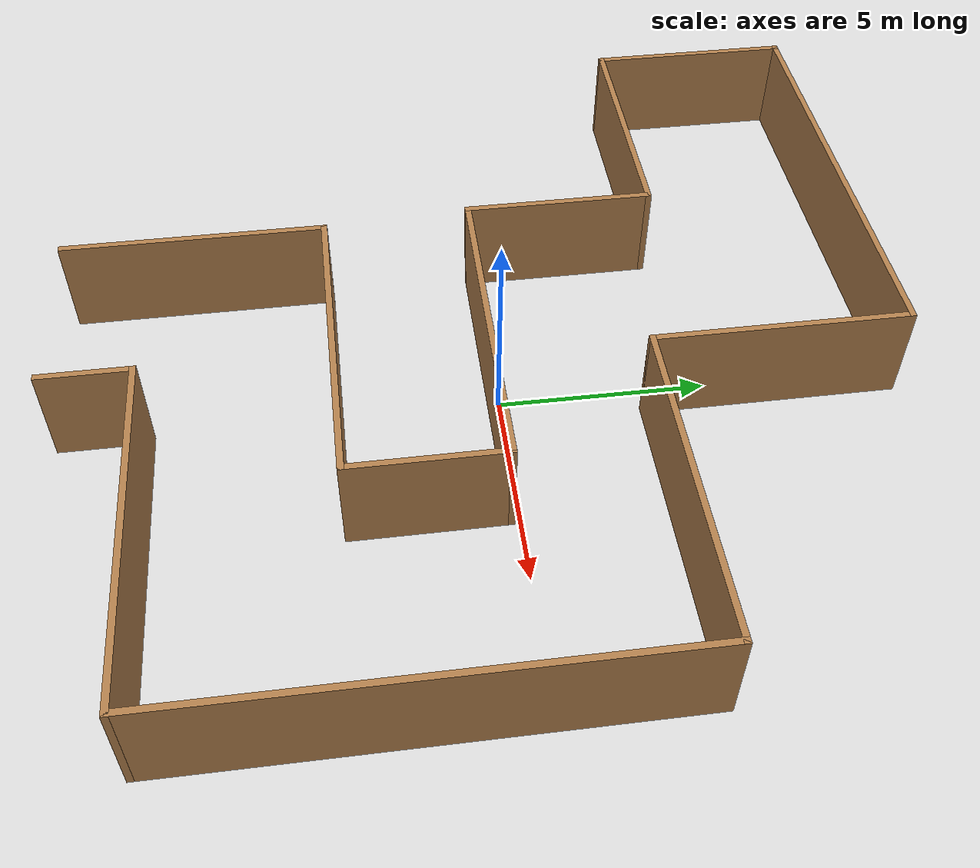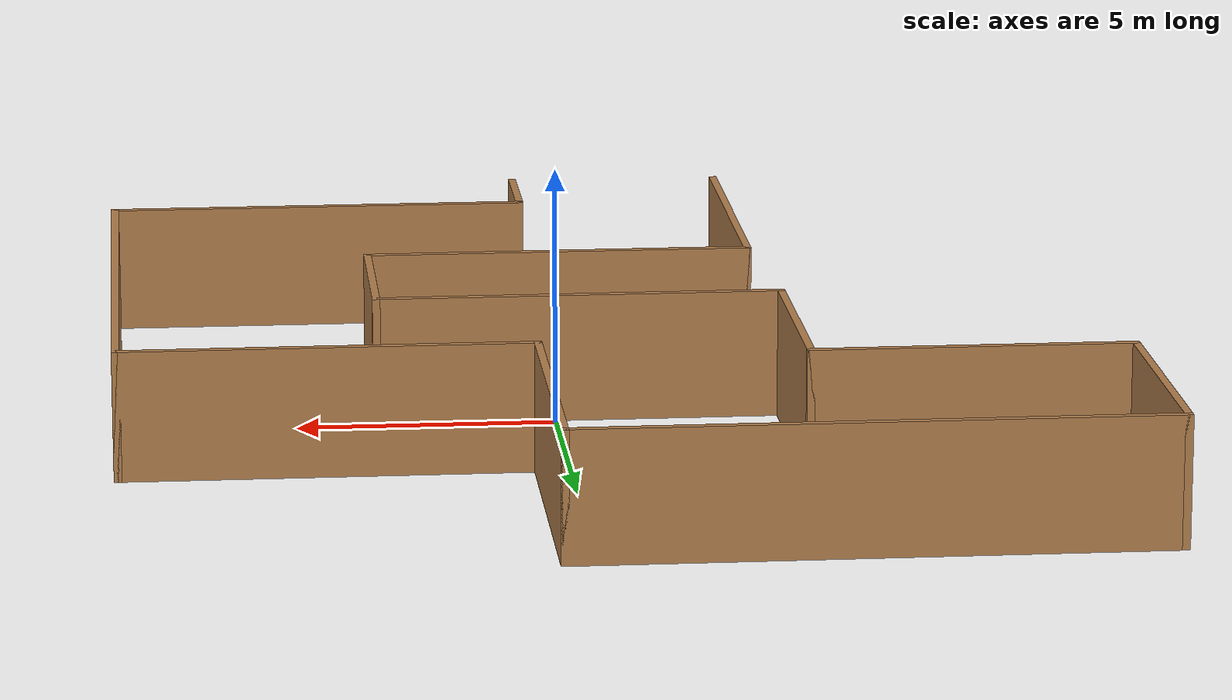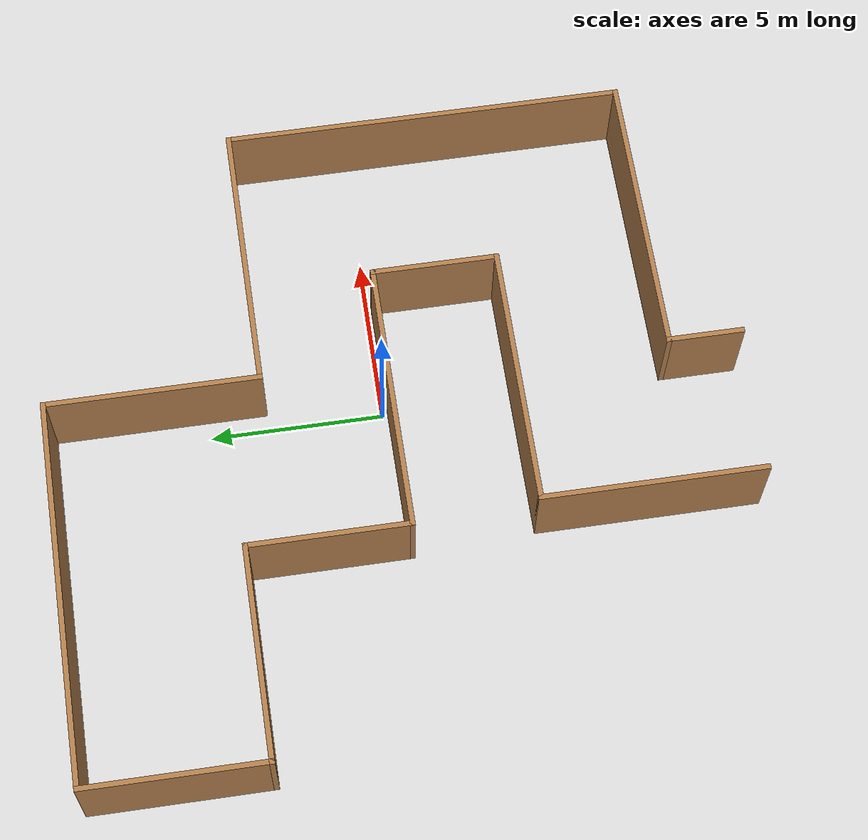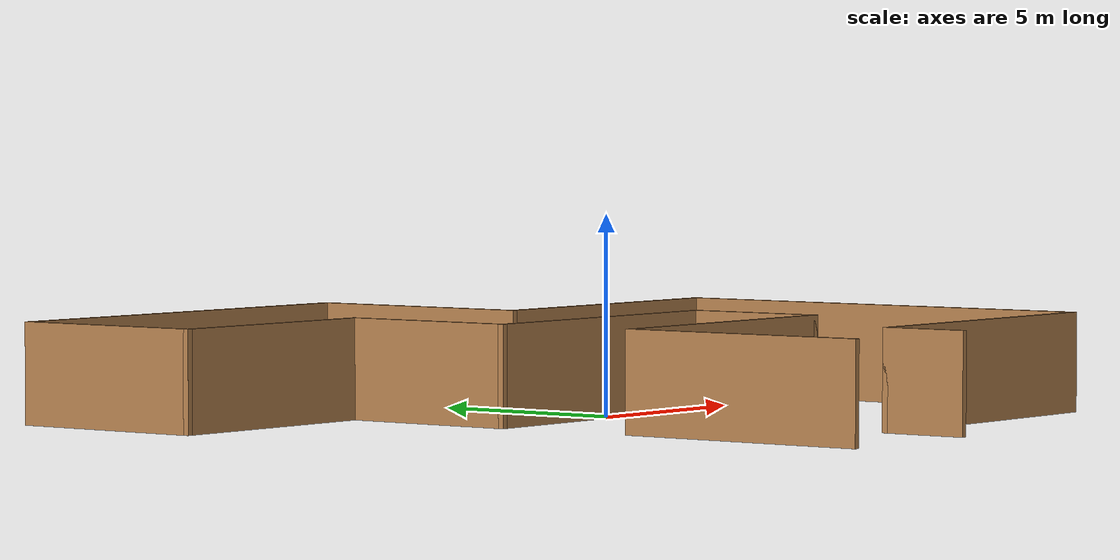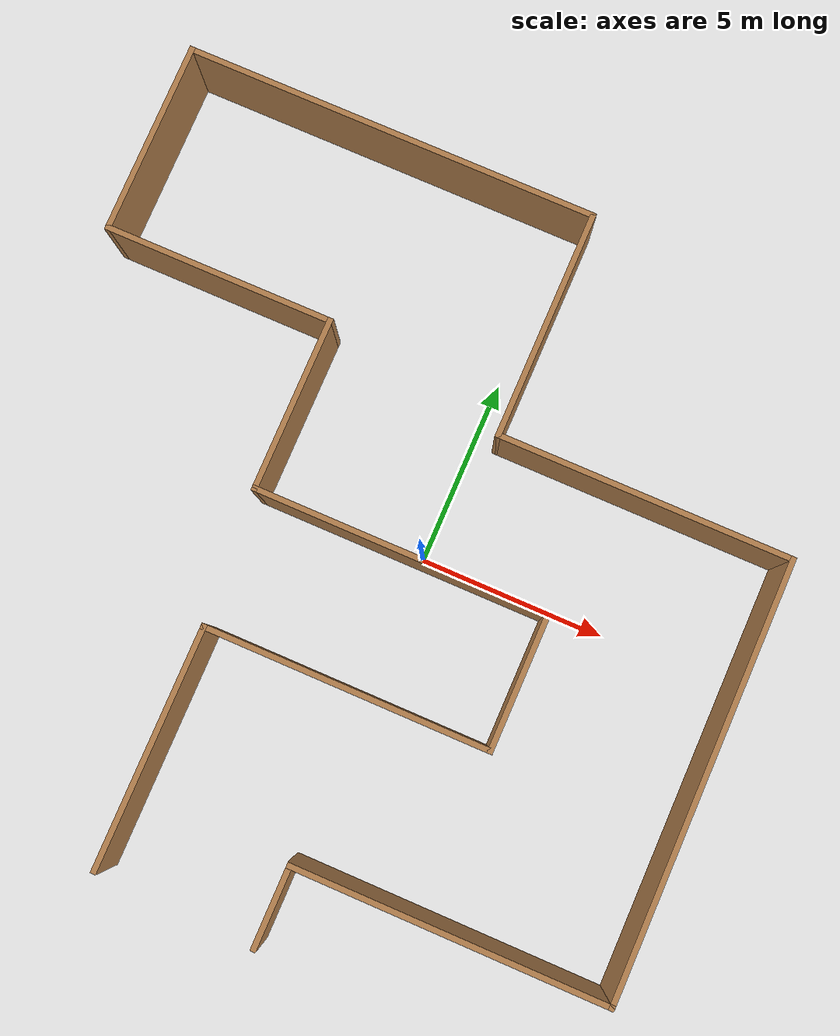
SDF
<?xml version='1.0'?>
<sdf version='1.6'>
  <model name='gazebo_course_2_easy'>
    <pose frame=''>-1.02928 -0.402715 0 0 -0 0</pose>
    <link name='Wall_10'>
      <collision name='Wall_10_Collision'>
        <geometry>
          <box>
            <size>7.75 0.15 2.5</size>
          </box>
        </geometry>
        <pose frame=''>0 0 1.25 0 -0 0</pose>
      </collision>
      <visual name='Wall_10_Visual'>
        <pose frame=''>0 0 1.25 0 -0 0</pose>
        <geometry>
          <box>
            <size>7.75 0.15 2.5</size>
          </box>
        </geometry>
        <material>
          <script>
            <uri>file://media/materials/scripts/gazebo.material</uri>
            <name>Gazebo/Wood</name>
          </script>
          <ambient>1 1 1 1</ambient>
        </material>
        <meta>
          <layer>0</layer>
        </meta>
      </visual>
      <pose frame=''>0.675 -3.4 0 0 -0 0</pose>
    </link>
    <link name='Wall_11'>
      <collision name='Wall_11_Collision'>
        <geometry>
          <box>
            <size>3.75 0.15 2.5</size>
          </box>
        </geometry>
        <pose frame=''>0 0 1.25 0 -0 0</pose>
      </collision>
      <visual name='Wall_11_Visual'>
        <pose frame=''>0 0 1.25 0 -0 0</pose>
        <geometry>
          <box>
            <size>3.75 0.15 2.5</size>
          </box>
        </geometry>
        <material>
          <script>
            <uri>file://media/materials/scripts/gazebo.material</uri>
            <name>Gazebo/Wood</name>
          </script>
          <ambient>1 1 1 1</ambient>
        </material>
        <meta>
          <layer>0</layer>
        </meta>
      </visual>
      <pose frame=''>4.475 -1.6 0 0 -0 1.5708</pose>
    </link>
    <link name='Wall_12'>
      <collision name='Wall_12_Collision'>
        <geometry>
          <box>
            <size>8 0.15 2.5</size>
          </box>
        </geometry>
        <pose frame=''>0 0 1.25 0 -0 0</pose>
      </collision>
      <visual name='Wall_12_Visual'>
        <pose frame=''>0 0 1.25 0 -0 0</pose>
        <geometry>
          <box>
            <size>8 0.15 2.5</size>
          </box>
        </geometry>
        <material>
          <script>
            <uri>file://media/materials/scripts/gazebo.material</uri>
            <name>Gazebo/Wood</name>
          </script>
          <ambient>1 1 1 1</ambient>
        </material>
        <meta>
          <layer>0</layer>
        </meta>
      </visual>
      <pose frame=''>0.55 0.2 0 0 -0 3.14159</pose>
    </link>
    <link name='Wall_13'>
      <collision name='Wall_13_Collision'>
        <geometry>
          <box>
            <size>4.75 0.15 2.5</size>
          </box>
        </geometry>
        <pose frame=''>0 0 1.25 0 -0 0</pose>
      </collision>
      <visual name='Wall_13_Visual'>
        <pose frame=''>0 0 1.25 0 -0 0</pose>
        <geometry>
          <box>
            <size>4.75 0.15 2.5</size>
          </box>
        </geometry>
        <material>
          <script>
            <uri>file://media/materials/scripts/gazebo.material</uri>
            <name>Gazebo/Wood</name>
          </script>
          <ambient>1 1 1 1</ambient>
        </material>
        <meta>
          <layer>0</layer>
        </meta>
      </visual>
      <pose frame=''>-3.375 2.5 0 0 -0 1.5708</pose>
    </link>
    <link name='Wall_14'>
      <collision name='Wall_14_Collision'>
        <geometry>
          <box>
            <size>6.25 0.15 2.5</size>
          </box>
        </geometry>
        <pose frame=''>0 0 1.25 0 -0 0</pose>
      </collision>
      <visual name='Wall_14_Visual'>
        <pose frame=''>0 0 1.25 0 -0 0</pose>
        <geometry>
          <box>
            <size>6.25 0.15 2.5</size>
          </box>
        </geometry>
        <material>
          <script>
            <uri>file://media/materials/scripts/gazebo.material</uri>
            <name>Gazebo/Wood</name>
          </script>
          <ambient>1 1 1 1</ambient>
        </material>
        <meta>
          <layer>0</layer>
        </meta>
      </visual>
      <pose frame=''>-6.425 4.8 0 0 -0 3.14159</pose>
    </link>
    <link name='Wall_15'>
      <collision name='Wall_15_Collision'>
        <geometry>
          <box>
            <size>5.25 0.15 2.5</size>
          </box>
        </geometry>
        <pose frame=''>0 0 1.25 0 -0 0</pose>
      </collision>
      <visual name='Wall_15_Visual'>
        <pose frame=''>0 0 1.25 0 -0 0</pose>
        <geometry>
          <box>
            <size>5.25 0.15 2.5</size>
          </box>
        </geometry>
        <material>
          <script>
            <uri>file://media/materials/scripts/gazebo.material</uri>
            <name>Gazebo/Wood</name>
          </script>
          <ambient>1 1 1 1</ambient>
        </material>
        <meta>
          <layer>0</layer>
        </meta>
      </visual>
      <pose frame=''>-9.475 7.35 0 0 -0 1.5708</pose>
    </link>
    <link name='Wall_16'>
      <collision name='Wall_16_Collision'>
        <geometry>
          <box>
            <size>11.25 0.15 2.5</size>
          </box>
        </geometry>
        <pose frame=''>0 0 1.25 0 -0 0</pose>
      </collision>
      <visual name='Wall_16_Visual'>
        <pose frame=''>0 0 1.25 0 -0 0</pose>
        <geometry>
          <box>
            <size>11.25 0.15 2.5</size>
          </box>
        </geometry>
        <material>
          <script>
            <uri>file://media/materials/scripts/gazebo.material</uri>
            <name>Gazebo/Wood</name>
          </script>
          <ambient>1 1 1 1</ambient>
        </material>
        <meta>
          <layer>0</layer>
        </meta>
      </visual>
      <pose frame=''>-3.925 9.9 0 0 -0 0</pose>
    </link>
    <link name='Wall_17'>
      <collision name='Wall_17_Collision'>
        <geometry>
          <box>
            <size>6.25 0.15 2.5</size>
          </box>
        </geometry>
        <pose frame=''>0 0 1.25 0 -0 0</pose>
      </collision>
      <visual name='Wall_17_Visual'>
        <pose frame=''>0 0 1.25 0 -0 0</pose>
        <geometry>
          <box>
            <size>6.25 0.15 2.5</size>
          </box>
        </geometry>
        <material>
          <script>
            <uri>file://media/materials/scripts/gazebo.material</uri>
            <name>Gazebo/Wood</name>
          </script>
          <ambient>1 1 1 1</ambient>
        </material>
        <meta>
          <layer>0</layer>
        </meta>
      </visual>
      <pose frame=''>1.625 6.85 0 0 -0 -1.5708</pose>
    </link>
    <link name='Wall_18'>
      <collision name='Wall_18_Collision'>
        <geometry>
          <box>
            <size>8 0.15 2.5</size>
          </box>
        </geometry>
        <pose frame=''>0 0 1.25 0 -0 0</pose>
      </collision>
      <visual name='Wall_18_Visual'>
        <pose frame=''>0 0 1.25 0 -0 0</pose>
        <geometry>
          <box>
            <size>8 0.15 2.5</size>
          </box>
        </geometry>
        <material>
          <script>
            <uri>file://media/materials/scripts/gazebo.material</uri>
            <name>Gazebo/Wood</name>
          </script>
          <ambient>1 1 1 1</ambient>
        </material>
        <meta>
          <layer>0</layer>
        </meta>
      </visual>
      <pose frame=''>5.55 3.8 0 0 -0 0</pose>
    </link>
    <link name='Wall_19'>
      <collision name='Wall_19_Collision'>
        <geometry>
          <box>
            <size>11.75 0.15 2.5</size>
          </box>
        </geometry>
        <pose frame=''>0 0 1.25 0 -0 0</pose>
      </collision>
      <visual name='Wall_19_Visual'>
        <pose frame=''>0 0 1.25 0 -0 0</pose>
        <geometry>
          <box>
            <size>11.75 0.15 2.5</size>
          </box>
        </geometry>
        <material>
          <script>
            <uri>file://media/materials/scripts/gazebo.material</uri>
            <name>Gazebo/Wood</name>
          </script>
          <ambient>1 1 1 1</ambient>
        </material>
        <meta>
          <layer>0</layer>
        </meta>
      </visual>
      <pose frame=''>9.475 -2 0 0 -0 -1.5708</pose>
    </link>
    <link name='Wall_20'>
      <collision name='Wall_20_Collision'>
        <geometry>
          <box>
            <size>8.5 0.15 2.5</size>
          </box>
        </geometry>
        <pose frame=''>0 0 1.25 0 -0 0</pose>
      </collision>
      <visual name='Wall_20_Visual'>
        <pose frame=''>0 0 1.25 0 -0 0</pose>
        <geometry>
          <box>
            <size>8.5 0.15 2.5</size>
          </box>
        </geometry>
        <material>
          <script>
            <uri>file://media/materials/scripts/gazebo.material</uri>
            <name>Gazebo/Wood</name>
          </script>
          <ambient>1 1 1 1</ambient>
        </material>
        <meta>
          <layer>0</layer>
        </meta>
      </visual>
      <pose frame=''>5.3 -7.8 0 0 -0 3.14159</pose>
    </link>
    <link name='Wall_21'>
      <collision name='Wall_21_Collision'>
        <geometry>
          <box>
            <size>2.25 0.15 2.5</size>
          </box>
        </geometry>
        <pose frame=''>0 0 1.25 0 -0 0</pose>
      </collision>
      <visual name='Wall_21_Visual'>
        <pose frame=''>0 0 1.25 0 -0 0</pose>
        <geometry>
          <box>
            <size>2.25 0.15 2.5</size>
          </box>
        </geometry>
        <material>
          <script>
            <uri>file://media/materials/scripts/gazebo.material</uri>
            <name>Gazebo/Wood</name>
          </script>
          <ambient>1 1 1 1</ambient>
        </material>
        <meta>
          <layer>0</layer>
        </meta>
      </visual>
      <pose frame=''>1.125 -8.85 0 0 -0 -1.5708</pose>
    </link>
    <link name='Wall_9'>
      <collision name='Wall_9_Collision'>
        <geometry>
          <box>
            <size>6.5 0.15 2.5</size>
          </box>
        </geometry>
        <pose frame=''>0 0 1.25 0 -0 0</pose>
      </collision>
      <visual name='Wall_9_Visual'>
        <pose frame=''>0 0 1.25 0 -0 0</pose>
        <geometry>
          <box>
            <size>6.5 0.15 2.5</size>
          </box>
        </geometry>
        <material>
          <script>
            <uri>file://media/materials/scripts/gazebo.material</uri>
            <name>Gazebo/Wood</name>
          </script>
          <ambient>1 1 1 1</ambient>
        </material>
        <meta>
          <layer>0</layer>
        </meta>
      </visual>
      <pose frame=''>-3.125 -6.575 0 0 -0 1.5708</pose>
    </link>
    <static>1</static>
  </model>
</sdf>
